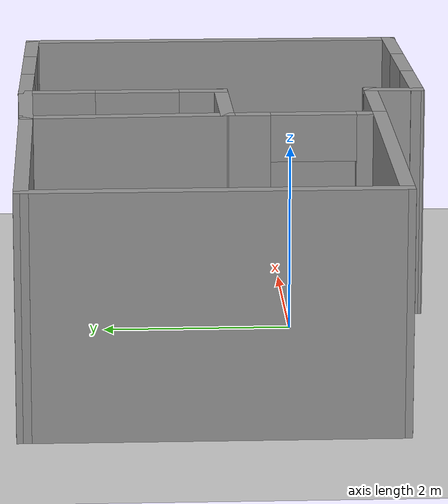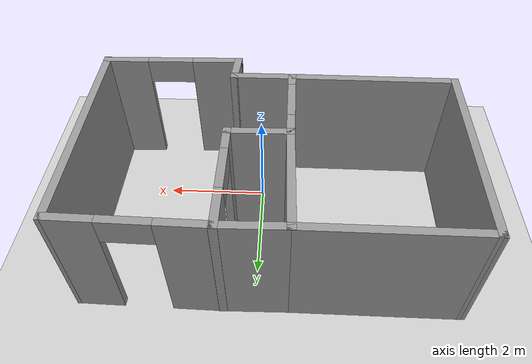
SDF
<sdf version="1.7">
 <world name="default">
  <light name="sun" type="directional">
   <pose>0 0 10 0 -0 0</pose>
   <diffuse>0.8 0.8 0.8 1</diffuse>
   <specular>0.2 0.2 0.2 1</specular>
   <attenuation>
    <range>1000</range>
    <constant>0.9</constant>
    <linear>0.01</linear>
    <quadratic>0.001</quadratic>
   </attenuation>
   <direction>-0.5 0.1 -0.9</direction>
   <spot><inner_angle>0</inner_angle><outer_angle>0</outer_angle><falloff>0</falloff></spot>
  </light>
  <model name="ground_plane">
   <static>1</static>
   <link name="link">
    <collision name="collision">
     <geometry><plane><normal>0 0 1</normal><size>100 100</size></plane></geometry>
     <surface>
      <contact><collide_bitmask>65535</collide_bitmask></contact>
      <friction><ode><mu>100</mu><mu2>50</mu2></ode></friction>
     </surface>
    </collision>
    <visual name="visual">
     <cast_shadows>0</cast_shadows>
     <geometry><plane><normal>0 0 1</normal><size>100 100</size></plane></geometry>
     <material>
      <script><uri>file://media/materials/scripts/gazebo.material</uri><name>Gazebo/Grey</name></script>
     </material>
    </visual>
   </link>
  </model>
  <gravity>0 0 -9.8</gravity>
  <magnetic_field>6e-06 2.3e-05 -4.2e-05</magnetic_field>
  <atmosphere type="adiabatic"/>
  <physics type="ode">
   <max_step_size>0.001</max_step_size>
   <real_time_factor>1</real_time_factor>
   <real_time_update_rate>1000</real_time_update_rate>
  </physics>
  <scene><ambient>0.4 0.4 0.4 1</ambient><background>0.7 0.7 0.7 1</background><shadows>1</shadows></scene>
  <audio><device>default</device></audio>
  <spherical_coordinates>
   <surface_model>EARTH_WGS84</surface_model>
   <latitude_deg>0</latitude_deg>
   <longitude_deg>0</longitude_deg>
   <elevation>0</elevation>
   <heading_deg>0</heading_deg>
  </spherical_coordinates>
  <model name="Home">
   <pose>-0.260999 0.708367 0 0 -0 0</pose>
   <link name="Wall_0">
    <collision name="Wall_0_Collision">
     <geometry><box><size>3.27505 0.15 2.5</size></box></geometry>
     <pose>0 0 1.25 0 -0 0</pose>
    </collision>
    <visual name="Wall_0_Visual">
     <pose>0 0 1.25 0 -0 0</pose>
     <geometry><box><size>3.27505 0.15 2.5</size></box></geometry>
     <material>
      <script><uri>file://media/materials/scripts/gazebo.material</uri><name>Gazebo/Grey</name></script>
      <ambient>1 1 1 1</ambient>
     </material>
     <meta><layer>0</layer></meta>
    </visual>
    <pose>-1.91462 2.10086 0 0 -0 -0.006364</pose>
   </link>
   <link name="Wall_1">
    <collision name="Wall_1_Collision">
     <geometry><box><size>2.25059 0.15 2.5</size></box></geometry>
     <pose>0 0 1.25 0 -0 0</pose>
    </collision>
    <visual name="Wall_1_Visual">
     <pose>0 0 1.25 0 -0 0</pose>
     <geometry><box><size>2.25059 0.15 2.5</size></box></geometry>
     <material>
      <script><uri>file://media/materials/scripts/gazebo.material</uri><name>Gazebo/Grey</name></script>
      <ambient>1 1 1 1</ambient>
     </material>
     <meta><layer>0</layer></meta>
    </visual>
    <pose>-0.327334 1.03595 0 0 -0 -1.54713</pose>
   </link>
   <link name="Wall_10">
    <pose>2.13603 -2.07718 0 0 -0 -3.11748</pose>
    <visual name="Wall_10_Visual_0">
     <pose>-0.955115 0 1.25 0 -0 0</pose>
     <geometry><box><size>0.920097 0.15 2.5</size></box></geometry>
     <material>
      <script><uri>file://media/materials/scripts/gazebo.material</uri><name>Gazebo/Grey</name></script>
      <ambient>1 1 1 1</ambient>
     </material>
     <meta><layer>0</layer></meta>
    </visual>
    <collision name="Wall_10_Collision_0">
     <geometry><box><size>0.920097 0.15 2.5</size></box></geometry>
     <pose>-0.955115 0 1.25 0 -0 0</pose>
    </collision>
    <visual name="Wall_10_Visual_1">
     <pose>0.910049 0 1.25 0 -0 0</pose>
     <geometry><box><size>1.01023 0.15 2.5</size></box></geometry>
     <material>
      <script><uri>file://media/materials/scripts/gazebo.material</uri><name>Gazebo/Grey</name></script>
      <ambient>1 1 1 1</ambient>
     </material>
     <meta><layer>0</layer></meta>
    </visual>
    <collision name="Wall_10_Collision_1">
     <geometry><box><size>1.01023 0.15 2.5</size></box></geometry>
     <pose>0.910049 0 1.25 0 -0 0</pose>
    </collision>
    <visual name="Wall_10_Visual_2">
     <pose>-0.045067 0 2.25 0 -0 0</pose>
     <geometry><box><size>0.9 0.15 0.5</size></box></geometry>
     <material>
      <script><uri>file://media/materials/scripts/gazebo.material</uri><name>Gazebo/Grey</name></script>
      <ambient>1 1 1 1</ambient>
     </material>
     <meta><layer>0</layer></meta>
    </visual>
    <collision name="Wall_10_Collision_2">
     <geometry><box><size>0.9 0.15 0.5</size></box></geometry>
     <pose>-0.045067 0 2.25 0 -0 0</pose>
    </collision>
   </link>
   <link name="Wall_11">
    <collision name="Wall_11_Collision">
     <geometry><box><size>0.648892 0.15 2.5</size></box></geometry>
     <pose>0 0 1.25 0 -0 0</pose>
    </collision>
    <visual name="Wall_11_Visual">
     <pose>0 0 1.25 0 -0 0</pose>
     <geometry><box><size>0.648892 0.15 2.5</size></box></geometry>
     <material>
      <script><uri>file://media/materials/scripts/gazebo.material</uri><name>Gazebo/Grey</name></script>
      <ambient>1 1 1 1</ambient>
     </material>
     <meta><layer>0</layer></meta>
    </visual>
    <pose>0.816934 -1.85686 0 0 -0 1.50293</pose>
   </link>
   <link name="Wall_12">
    <collision name="Wall_12_Collision">
     <geometry><box><size>1.2901 0.15 2.5</size></box></geometry>
     <pose>0 0 1.25 0 -0 0</pose>
    </collision>
    <visual name="Wall_12_Visual">
     <pose>0 0 1.25 0 -0 0</pose>
     <geometry><box><size>1.2901 0.15 2.5</size></box></geometry>
     <material>
      <script><uri>file://media/materials/scripts/gazebo.material</uri><name>Gazebo/Grey</name></script>
      <ambient>1 1 1 1</ambient>
     </material>
     <meta><layer>0</layer></meta>
    </visual>
    <pose>0.267567 -1.60666 0 0 -0 -3.13734</pose>
   </link>
   <link name="Wall_14">
    <collision name="Wall_14_Collision">
     <geometry><box><size>1.28863 0.15 2.5</size></box></geometry>
     <pose>0 0 1.25 0 -0 0</pose>
    </collision>
    <visual name="Wall_14_Visual">
     <pose>0 0 1.25 0 -0 0</pose>
     <geometry><box><size>1.28863 0.15 2.5</size></box></geometry>
     <material>
      <script><uri>file://media/materials/scripts/gazebo.material</uri><name>Gazebo/Grey</name></script>
      <ambient>1 1 1 1</ambient>
     </material>
     <meta><layer>0</layer></meta>
    </visual>
    <pose>0.266627 -0.001018 0 0 -0 0.014168</pose>
   </link>
   <link name="Wall_15">
    <pose>0.83197 1.0608 0 0 -0 1.5708</pose>
    <visual name="Wall_15_Visual_0">
     <pose>-0.864633 0 1.25 0 -0 0</pose>
     <geometry><box><size>0.520734 0.15 2.5</size></box></geometry>
     <material>
      <script><uri>file://media/materials/scripts/gazebo.material</uri><name>Gazebo/Grey</name></script>
      <ambient>1 1 1 1</ambient>
     </material>
     <meta><layer>0</layer></meta>
    </visual>
    <collision name="Wall_15_Collision_0">
     <geometry><box><size>0.520734 0.15 2.5</size></box></geometry>
     <pose>-0.864633 0 1.25 0 -0 0</pose>
    </collision>
    <visual name="Wall_15_Visual_1">
     <pose>0.710367 0 1.25 0 -0 0</pose>
     <geometry><box><size>0.829266 0.15 2.5</size></box></geometry>
     <material>
      <script><uri>file://media/materials/scripts/gazebo.material</uri><name>Gazebo/Grey</name></script>
      <ambient>1 1 1 1</ambient>
     </material>
     <meta><layer>0</layer></meta>
    </visual>
    <collision name="Wall_15_Collision_1">
     <geometry><box><size>0.829266 0.15 2.5</size></box></geometry>
     <pose>0.710367 0 1.25 0 -0 0</pose>
    </collision>
    <visual name="Wall_15_Visual_2">
     <pose>-0.154266 0 2.25 0 -0 0</pose>
     <geometry><box><size>0.9 0.15 0.5</size></box></geometry>
     <material>
      <script><uri>file://media/materials/scripts/gazebo.material</uri><name>Gazebo/Grey</name></script>
      <ambient>1 1 1 1</ambient>
     </material>
     <meta><layer>0</layer></meta>
    </visual>
    <collision name="Wall_15_Collision_2">
     <geometry><box><size>0.9 0.15 0.5</size></box></geometry>
     <pose>-0.154266 0 2.25 0 -0 0</pose>
    </collision>
   </link>
   <link name="Wall_2">
    <pose>-0.302476 -0.809082 0 0 -0 -1.5708</pose>
    <visual name="Wall_2_Visual_0">
     <pose>-0.611615 0 1.25 0 -0 0</pose>
     <geometry><box><size>0.52677 0.15 2.5</size></box></geometry>
     <material>
      <script><uri>file://media/materials/scripts/gazebo.material</uri><name>Gazebo/Grey</name></script>
      <ambient>1 1 1 1</ambient>
     </material>
     <meta><layer>0</layer></meta>
    </visual>
    <collision name="Wall_2_Collision_0">
     <geometry><box><size>0.52677 0.15 2.5</size></box></geometry>
     <pose>-0.611615 0 1.25 0 -0 0</pose>
    </collision>
    <visual name="Wall_2_Visual_1">
     <pose>0.713385 0 1.25 0 -0 0</pose>
     <geometry><box><size>0.32323 0.15 2.5</size></box></geometry>
     <material>
      <script><uri>file://media/materials/scripts/gazebo.material</uri><name>Gazebo/Grey</name></script>
      <ambient>1 1 1 1</ambient>
     </material>
     <meta><layer>0</layer></meta>
    </visual>
    <collision name="Wall_2_Collision_1">
     <geometry><box><size>0.32323 0.15 2.5</size></box></geometry>
     <pose>0.713385 0 1.25 0 -0 0</pose>
    </collision>
    <visual name="Wall_2_Visual_2">
     <pose>0.10177 0 2.25 0 -0 0</pose>
     <geometry><box><size>0.9 0.15 0.5</size></box></geometry>
     <material>
      <script><uri>file://media/materials/scripts/gazebo.material</uri><name>Gazebo/Grey</name></script>
      <ambient>1 1 1 1</ambient>
     </material>
     <meta><layer>0</layer></meta>
    </visual>
    <collision name="Wall_2_Collision_2">
     <geometry><box><size>0.9 0.15 0.5</size></box></geometry>
     <pose>0.10177 0 2.25 0 -0 0</pose>
    </collision>
   </link>
   <link name="Wall_4">
    <collision name="Wall_4_Collision">
     <geometry><box><size>3.32464 0.15 2.5</size></box></geometry>
     <pose>0 0 1.25 0 -0 0</pose>
    </collision>
    <visual name="Wall_4_Visual">
     <pose>0 0 1.25 0 -0 0</pose>
     <geometry><box><size>3.32464 0.15 2.5</size></box></geometry>
     <material>
      <script><uri>file://media/materials/scripts/gazebo.material</uri><name>Gazebo/Grey</name></script>
      <ambient>1 1 1 1</ambient>
     </material>
     <meta><layer>0</layer></meta>
    </visual>
    <pose>-1.88976 -1.59914 0 0 -0 3.13533</pose>
   </link>
   <link name="Wall_5">
    <collision name="Wall_5_Collision">
     <geometry><box><size>3.85 0.15 2.5</size></box></geometry>
     <pose>0 0 1.25 0 -0 0</pose>
    </collision>
    <visual name="Wall_5_Visual">
     <pose>0 0 1.25 0 -0 0</pose>
     <geometry><box><size>3.85 0.15 2.5</size></box></geometry>
     <material>
      <script><uri>file://media/materials/scripts/gazebo.material</uri><name>Gazebo/Grey</name></script>
      <ambient>1 1 1 1</ambient>
     </material>
     <meta><layer>0</layer></meta>
    </visual>
    <pose>-3.47705 0.260805 0 0 -0 1.5708</pose>
   </link>
   <link name="Wall_7">
    <collision name="Wall_7_Collision">
     <geometry><box><size>1.33833 0.15 2.5</size></box></geometry>
     <pose>0 0 1.25 0 -0 0</pose>
    </collision>
    <visual name="Wall_7_Visual">
     <pose>0 0 1.25 0 -0 0</pose>
     <geometry><box><size>1.33833 0.15 2.5</size></box></geometry>
     <material>
      <script><uri>file://media/materials/scripts/gazebo.material</uri><name>Gazebo/Grey</name></script>
      <ambient>1 1 1 1</ambient>
     </material>
     <meta><layer>0</layer></meta>
    </visual>
    <pose>0.241768 2.09898 0 0 -0 0.013576</pose>
   </link>
   <link name="Wall_8">
    <pose>2.15577 2.07861 0 0 -0 -0.021541</pose>
    <visual name="Wall_8_Visual_0">
     <pose>-0.898078 0 1.25 0 -0 0</pose>
     <geometry><box><size>0.994533 0.15 2.5</size></box></geometry>
     <material>
      <script><uri>file://media/materials/scripts/gazebo.material</uri><name>Gazebo/Grey</name></script>
      <ambient>1 1 1 1</ambient>
     </material>
     <meta><layer>0</layer></meta>
    </visual>
    <collision name="Wall_8_Collision_0">
     <geometry><box><size>0.994533 0.15 2.5</size></box></geometry>
     <pose>-0.898078 0 1.25 0 -0 0</pose>
    </collision>
    <visual name="Wall_8_Visual_1">
     <pose>0.947267 0 1.25 0 -0 0</pose>
     <geometry><box><size>0.896156 0.15 2.5</size></box></geometry>
     <material>
      <script><uri>file://media/materials/scripts/gazebo.material</uri><name>Gazebo/Grey</name></script>
      <ambient>1 1 1 1</ambient>
     </material>
     <meta><layer>0</layer></meta>
    </visual>
    <collision name="Wall_8_Collision_1">
     <geometry><box><size>0.896156 0.15 2.5</size></box></geometry>
     <pose>0.947267 0 1.25 0 -0 0</pose>
    </collision>
    <visual name="Wall_8_Visual_2">
     <pose>0.049188 0 2.25 0 -0 0</pose>
     <geometry><box><size>0.9 0.15 0.5</size></box></geometry>
     <material>
      <script><uri>file://media/materials/scripts/gazebo.material</uri><name>Gazebo/Grey</name></script>
      <ambient>1 1 1 1</ambient>
     </material>
     <meta><layer>0</layer></meta>
    </visual>
    <collision name="Wall_8_Collision_2">
     <geometry><box><size>0.9 0.15 0.5</size></box></geometry>
     <pose>0.049188 0 2.25 0 -0 0</pose>
    </collision>
   </link>
   <link name="Wall_9">
    <collision name="Wall_9_Collision">
     <geometry><box><size>4.25 0.15 2.5</size></box></geometry>
     <pose>0 0 1.25 0 -0 0</pose>
    </collision>
    <visual name="Wall_9_Visual">
     <pose>0 0 1.25 0 -0 0</pose>
     <geometry><box><size>4.25 0.15 2.5</size></box></geometry>
     <material>
      <script><uri>file://media/materials/scripts/gazebo.material</uri><name>Gazebo/Grey</name></script>
      <ambient>1 1 1 1</ambient>
     </material>
     <meta><layer>0</layer></meta>
    </visual>
    <pose>3.47581 0.000167 0 0 -0 -1.5708</pose>
   </link>
   <static>1</static>
  </model>
 </world>
</sdf>
